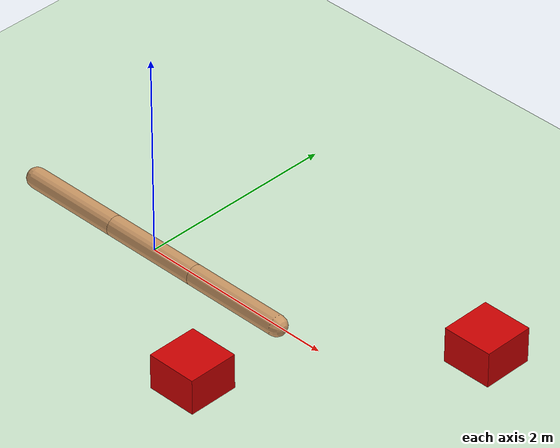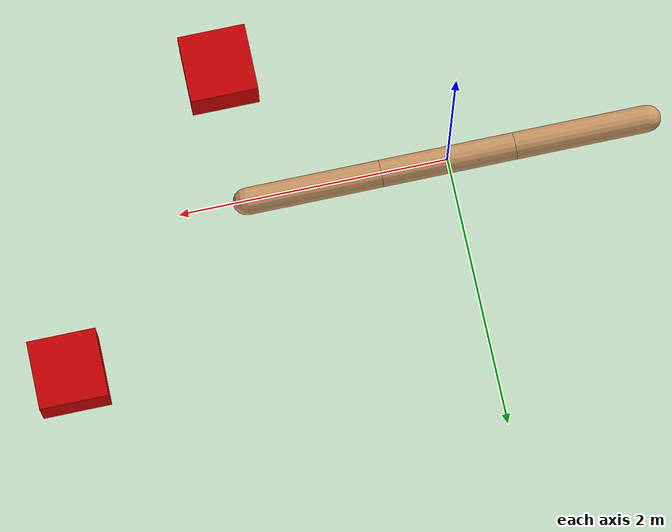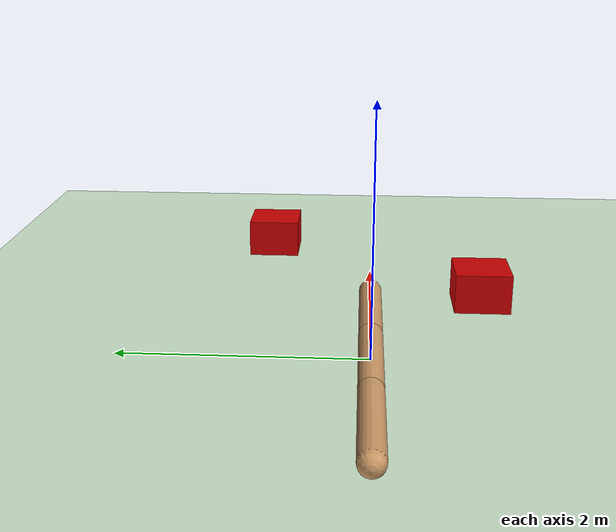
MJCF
<mujoco model="swimmer">
  <compiler angle="degree" coordinate="local" inertiafromgeom="true"/>
  <option collision="predefined" density="4000" integrator="RK4" timestep="0.01" viscosity="0.1"/>
  <contact>
    <pair geom1="track" geom2="box1" />
    <pair geom1="mid" geom2="box1" />
    <pair geom1="back" geom2="box1" />
    <pair geom1="track" geom2="box2" />
    <pair geom1="mid" geom2="box2" />
    <pair geom1="back" geom2="box2" />
  </contact>
  <default>
    <geom conaffinity="1" condim="1" contype="1" material="geom" rgba="0.8 0.6 .4 1"/>
    <joint armature='0.1'  />
  </default>
  <asset>
    <texture builtin="gradient" height="100" rgb1="1 1 1" rgb2="0 0 0" type="skybox" width="100"/>
    <texture builtin="flat" height="1278" mark="cross" markrgb="1 1 1" name="texgeom" random="0.01" rgb1="0.8 0.6 0.4" rgb2="0.8 0.6 0.4" type="cube" width="127"/>
    <texture builtin="checker" height="100" name="texplane" rgb1="0 0 0" rgb2="0.8 0.8 0.8" type="2d" width="100"/>
    <material name="MatPlane" reflectance="0.5" shininess="1" specular="1" texrepeat="30 30" texture="texplane"/>
    <material name="geom" texture="texgeom" texuniform="true"/>
  </asset>
  <worldbody>
    <light cutoff="100" diffuse="1 1 1" dir="-0 0 -1.3" directional="true" exponent="1" pos="0 0 1.3" specular=".1 .1 .1"/>
    <geom conaffinity="1" condim="3" material="MatPlane" name="floor" pos="0 0 -0.1" rgba="0.8 0.9 0.8 1" size="40 40 0.1" type="plane"/>
    <body name="box1" pos="3 1 0.">
      <geom name="box1" density="1000" size="0.25 0.25 0.25" rgba="0.8 .0 .0 1" type="box"/>
    </body>
    <body name="box2" pos="1.5 -1 0.">
      <geom name="box2" density="1000" size="0.25 0.25 0.25" rgba="0.8 .0 .0 1" type="box"/>
    </body>
    <!--  ================= SWIMMER ================= /-->
    <body name="torso" pos="0 0 0">
      <camera name="camera" mode="track" pos="0 0 4" xyaxes="1 0 0 0 1 0" fovy="90"/>
      <geom name="track" density="1000" fromto="1.5 0 0 0.5 0 0" size="0.1" type="capsule"/>
      <joint axis="1 0 0" name="slider1" pos="1.5 0 0" type="slide"/>
      <joint axis="0 1 0" name="slider2" pos="1.5 0 0" type="slide"/>
      <joint axis="0 0 1" name="rot" pos="1.5 0 0" type="hinge"/>
      <body name="mid" pos="0.5 0 0">
        <geom name="mid" density="1000" fromto="0 0 0 -1 0 0" size="0.1" type="capsule"/>
        <joint axis="0 0 1" limited="true" name="rot2" pos="0 0 0" range="-100 100" type="hinge"/>
        <body name="back" pos="-1 0 0">
          <geom name="back" density="1000" fromto="0 0 0 -1 0 0" size="0.1" type="capsule"/>
          <joint axis="0 0 1" limited="true" name="rot3" pos="0 0 0" range="-100 100" type="hinge"/>
        </body>
      </body>
    </body>
  </worldbody>
  <actuator>
    <motor ctrllimited="true" ctrlrange="-1 1" gear="150.0" joint="rot2"/>
    <motor ctrllimited="true" ctrlrange="-1 1" gear="150.0" joint="rot3"/>
  </actuator>
</mujoco>
